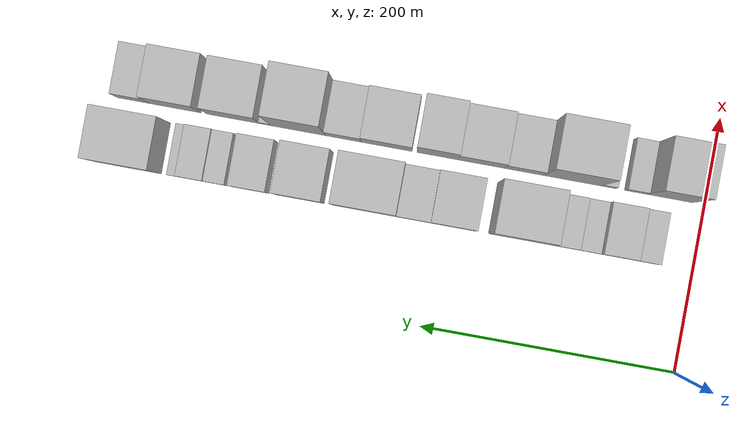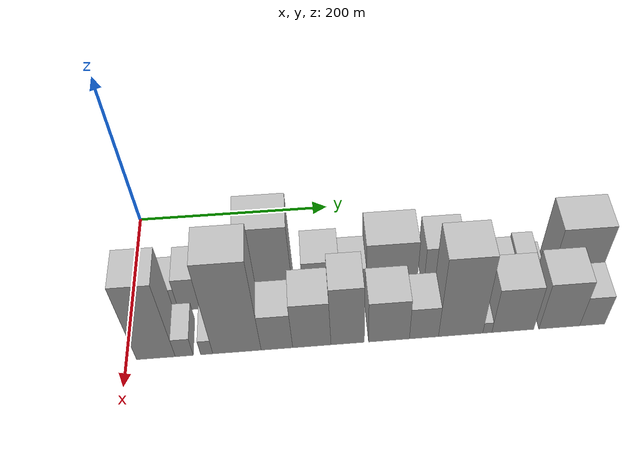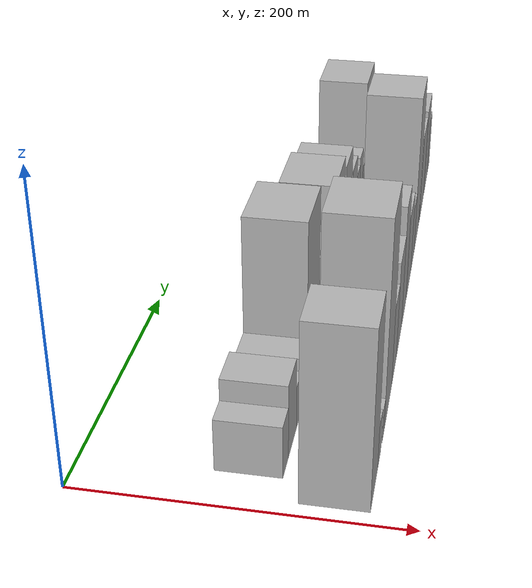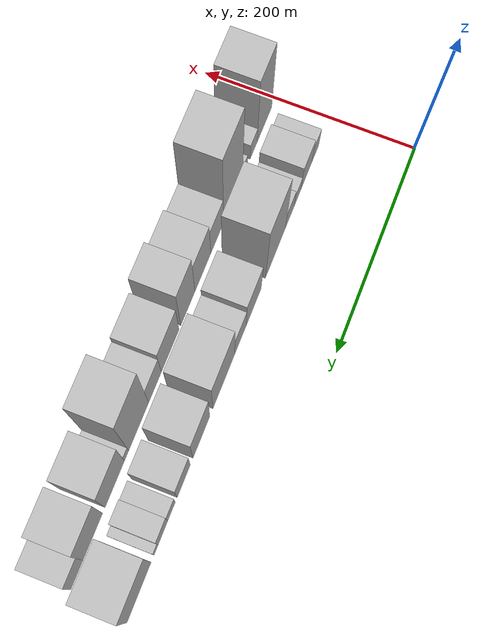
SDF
<sdf version="1.6">
 <world name="default">
  <model name="building_14">
   <static>1</static>
   <pose>100.0000 37.8365 0 0.000000 0.000000 0.000000</pose>
   <link name="link">
    <pose>0 0 18.00 0 0 0</pose>
    <collision name="collision"><geometry><box><size>40.0000 18.0312 36.0000</size></box></geometry></collision>
    <visual name="visual">
     <cast_shadows>0</cast_shadows>
     <geometry><box><size>40.0000 18.0312 36.0000</size></box></geometry>
     <material>
      <script>
       <uri>model://HANNAS_wall/materials/scripts</uri>
       <uri>model://HANNAS_wall/materials/textures</uri>
       <name>vrc/HANNAS_wall</name>
      </script>
     </material>
    </visual>
   </link>
  </model>
  <model name="building_15">
   <static>1</static>
   <pose>100.0000 60.6274 0 0.000000 0.000000 0.000000</pose>
   <link name="link">
    <pose>0 0 25.50 0 0 0</pose>
    <collision name="collision"><geometry><box><size>40.0000 27.5505 51.0000</size></box></geometry></collision>
    <visual name="visual">
     <cast_shadows>0</cast_shadows>
     <geometry><box><size>40.0000 27.5505 51.0000</size></box></geometry>
     <material>
      <script>
       <uri>model://HANNAS_wall/materials/scripts</uri>
       <uri>model://HANNAS_wall/materials/textures</uri>
       <name>vrc/HANNAS_wall</name>
      </script>
     </material>
    </visual>
   </link>
  </model>
  <model name="building_16">
   <static>1</static>
   <pose>100.0000 82.7552 0 0.000000 0.000000 0.000000</pose>
   <link name="link">
    <pose>0 0 15.00 0 0 0</pose>
    <collision name="collision"><geometry><box><size>40.0000 16.7052 30.0000</size></box></geometry></collision>
    <visual name="visual">
     <cast_shadows>0</cast_shadows>
     <geometry><box><size>40.0000 16.7052 30.0000</size></box></geometry>
     <material>
      <script>
       <uri>model://HANNAS_wall/materials/scripts</uri>
       <uri>model://HANNAS_wall/materials/textures</uri>
       <name>vrc/HANNAS_wall</name>
      </script>
     </material>
    </visual>
   </link>
  </model>
  <model name="building_17">
   <static>1</static>
   <pose>100.0000 101.9925 0 0.000000 0.000000 0.000000</pose>
   <link name="link">
    <pose>0 0 19.50 0 0 0</pose>
    <collision name="collision"><geometry><box><size>40.0000 21.7692 39.0000</size></box></geometry></collision>
    <visual name="visual">
     <cast_shadows>0</cast_shadows>
     <geometry><box><size>40.0000 21.7692 39.0000</size></box></geometry>
     <material>
      <script>
       <uri>model://HANNAS_wall/materials/scripts</uri>
       <uri>model://HANNAS_wall/materials/textures</uri>
       <name>vrc/HANNAS_wall</name>
      </script>
     </material>
    </visual>
   </link>
  </model>
  <model name="building_18">
   <static>1</static>
   <pose>100.0000 136.7933 0 0.000000 0.000000 0.000000</pose>
   <link name="link">
    <pose>0 0 60.00 0 0 0</pose>
    <collision name="collision"><geometry><box><size>40.0000 47.8324 120.0000</size></box></geometry></collision>
    <visual name="visual">
     <cast_shadows>0</cast_shadows>
     <geometry><box><size>40.0000 47.8324 120.0000</size></box></geometry>
     <material>
      <script>
       <uri>model://HANNAS_wall/materials/scripts</uri>
       <uri>model://HANNAS_wall/materials/textures</uri>
       <name>vrc/HANNAS_wall</name>
      </script>
     </material>
    </visual>
   </link>
  </model>
  <model name="building_19">
   <static>1</static>
   <pose>100.0000 188.5553 0 0.000000 0.000000 0.000000</pose>
   <link name="link">
    <pose>0 0 31.50 0 0 0</pose>
    <collision name="collision"><geometry><box><size>40.0000 35.6916 63.0000</size></box></geometry></collision>
    <visual name="visual">
     <cast_shadows>0</cast_shadows>
     <geometry><box><size>40.0000 35.6916 63.0000</size></box></geometry>
     <material>
      <script>
       <uri>model://HANNAS_wall/materials/scripts</uri>
       <uri>model://HANNAS_wall/materials/textures</uri>
       <name>vrc/HANNAS_wall</name>
      </script>
     </material>
    </visual>
   </link>
  </model>
  <model name="building_20">
   <static>1</static>
   <pose>100.0000 219.6502 0 0.000000 0.000000 0.000000</pose>
   <link name="link">
    <pose>0 0 24.00 0 0 0</pose>
    <collision name="collision"><geometry><box><size>40.0000 26.4983 48.0000</size></box></geometry></collision>
    <visual name="visual">
     <cast_shadows>0</cast_shadows>
     <geometry><box><size>40.0000 26.4983 48.0000</size></box></geometry>
     <material>
      <script>
       <uri>model://HANNAS_wall/materials/scripts</uri>
       <uri>model://HANNAS_wall/materials/textures</uri>
       <name>vrc/HANNAS_wall</name>
      </script>
     </material>
    </visual>
   </link>
  </model>
  <model name="building_21">
   <static>1</static>
   <pose>100.0000 257.8796 0 0.000000 0.000000 0.000000</pose>
   <link name="link">
    <pose>0 0 42.00 0 0 0</pose>
    <collision name="collision"><geometry><box><size>40.0000 49.9606 84.0000</size></box></geometry></collision>
    <visual name="visual">
     <cast_shadows>0</cast_shadows>
     <geometry><box><size>40.0000 49.9606 84.0000</size></box></geometry>
     <material>
      <script>
       <uri>model://HANNAS_wall/materials/scripts</uri>
       <uri>model://HANNAS_wall/materials/textures</uri>
       <name>vrc/HANNAS_wall</name>
      </script>
     </material>
    </visual>
   </link>
  </model>
  <model name="building_22">
   <static>1</static>
   <pose>100.0000 308.6367 0 0.000000 0.000000 0.000000</pose>
   <link name="link">
    <pose>0 0 36.00 0 0 0</pose>
    <collision name="collision"><geometry><box><size>40.0000 37.5536 72.0000</size></box></geometry></collision>
    <visual name="visual">
     <cast_shadows>0</cast_shadows>
     <geometry><box><size>40.0000 37.5536 72.0000</size></box></geometry>
     <material>
      <script>
       <uri>model://HANNAS_wall/materials/scripts</uri>
       <uri>model://HANNAS_wall/materials/textures</uri>
       <name>vrc/HANNAS_wall</name>
      </script>
     </material>
    </visual>
   </link>
  </model>
  <model name="building_23">
   <static>1</static>
   <pose>100.0000 347.7771 0 0.000000 0.000000 0.000000</pose>
   <link name="link">
    <pose>0 0 24.00 0 0 0</pose>
    <collision name="collision"><geometry><box><size>40.0000 28.7272 48.0000</size></box></geometry></collision>
    <visual name="visual">
     <cast_shadows>0</cast_shadows>
     <geometry><box><size>40.0000 28.7272 48.0000</size></box></geometry>
     <material>
      <script>
       <uri>model://HANNAS_wall/materials/scripts</uri>
       <uri>model://HANNAS_wall/materials/textures</uri>
       <name>vrc/HANNAS_wall</name>
      </script>
     </material>
    </visual>
   </link>
  </model>
  <model name="building_24">
   <static>1</static>
   <pose>100.0000 374.4131 0 0.000000 0.000000 0.000000</pose>
   <link name="link">
    <pose>0 0 15.00 0 0 0</pose>
    <collision name="collision"><geometry><box><size>40.0000 16.5447 30.0000</size></box></geometry></collision>
    <visual name="visual">
     <cast_shadows>0</cast_shadows>
     <geometry><box><size>40.0000 16.5447 30.0000</size></box></geometry>
     <material>
      <script>
       <uri>model://HANNAS_wall/materials/scripts</uri>
       <uri>model://HANNAS_wall/materials/textures</uri>
       <name>vrc/HANNAS_wall</name>
      </script>
     </material>
    </visual>
   </link>
  </model>
  <model name="building_25">
   <static>1</static>
   <pose>100.0000 393.1155 0 0.000000 0.000000 0.000000</pose>
   <link name="link">
    <pose>0 0 18.00 0 0 0</pose>
    <collision name="collision"><geometry><box><size>40.0000 20.8601 36.0000</size></box></geometry></collision>
    <visual name="visual">
     <cast_shadows>0</cast_shadows>
     <geometry><box><size>40.0000 20.8601 36.0000</size></box></geometry>
     <material>
      <script>
       <uri>model://HANNAS_wall/materials/scripts</uri>
       <uri>model://HANNAS_wall/materials/textures</uri>
       <name>vrc/HANNAS_wall</name>
      </script>
     </material>
    </visual>
   </link>
  </model>
  <model name="building_26">
   <static>1</static>
   <pose>100.0000 407.8156 0 0.000000 0.000000 0.000000</pose>
   <link name="link">
    <pose>0 0 9.00 0 0 0</pose>
    <collision name="collision"><geometry><box><size>40.0000 8.5401 18.0000</size></box></geometry></collision>
    <visual name="visual">
     <cast_shadows>0</cast_shadows>
     <geometry><box><size>40.0000 8.5401 18.0000</size></box></geometry>
     <material>
      <script>
       <uri>model://HANNAS_wall/materials/scripts</uri>
       <uri>model://HANNAS_wall/materials/textures</uri>
       <name>vrc/HANNAS_wall</name>
      </script>
     </material>
    </visual>
   </link>
  </model>
  <model name="building_27">
   <static>1</static>
   <pose>100.0000 443.5218 0 0.000000 0.000000 0.000000</pose>
   <link name="link">
    <pose>0 0 43.50 0 0 0</pose>
    <collision name="collision"><geometry><box><size>40.0000 50.8722 87.0000</size></box></geometry></collision>
    <visual name="visual">
     <cast_shadows>0</cast_shadows>
     <geometry><box><size>40.0000 50.8722 87.0000</size></box></geometry>
     <material>
      <script>
       <uri>model://HANNAS_wall/materials/scripts</uri>
       <uri>model://HANNAS_wall/materials/textures</uri>
       <name>vrc/HANNAS_wall</name>
      </script>
     </material>
    </visual>
   </link>
  </model>
  <model name="building_40">
   <static>1</static>
   <pose>152.0000 27.9602 0 0.000000 0.000000 0.000000</pose>
   <link name="link">
    <pose>0 0 60.00 0 0 0</pose>
    <collision name="collision"><geometry><box><size>40.0000 36.3512 120.0000</size></box></geometry></collision>
    <visual name="visual">
     <cast_shadows>0</cast_shadows>
     <geometry><box><size>40.0000 36.3512 120.0000</size></box></geometry>
     <material>
      <script>
       <uri>model://HANNAS_wall/materials/scripts</uri>
       <uri>model://HANNAS_wall/materials/textures</uri>
       <name>vrc/HANNAS_wall</name>
      </script>
     </material>
    </visual>
   </link>
  </model>
  <model name="building_41">
   <static>1</static>
   <pose>152.0000 54.6084 0 0.000000 0.000000 0.000000</pose>
   <link name="link">
    <pose>0 0 15.00 0 0 0</pose>
    <collision name="collision"><geometry><box><size>40.0000 16.9452 30.0000</size></box></geometry></collision>
    <visual name="visual">
     <cast_shadows>0</cast_shadows>
     <geometry><box><size>40.0000 16.9452 30.0000</size></box></geometry>
     <material>
      <script>
       <uri>model://HANNAS_wall/materials/scripts</uri>
       <uri>model://HANNAS_wall/materials/textures</uri>
       <name>vrc/HANNAS_wall</name>
      </script>
     </material>
    </visual>
   </link>
  </model>
  <model name="building_42">
   <static>1</static>
   <pose>152.0000 75.8098 0 0.000000 0.000000 0.000000</pose>
   <link name="link">
    <pose>0 0 12.00 0 0 0</pose>
    <collision name="collision"><geometry><box><size>40.0000 11.4576 24.0000</size></box></geometry></collision>
    <visual name="visual">
     <cast_shadows>0</cast_shadows>
     <geometry><box><size>40.0000 11.4576 24.0000</size></box></geometry>
     <material>
      <script>
       <uri>model://HANNAS_wall/materials/scripts</uri>
       <uri>model://HANNAS_wall/materials/textures</uri>
       <name>vrc/HANNAS_wall</name>
      </script>
     </material>
    </visual>
   </link>
  </model>
  <model name="building_43">
   <static>1</static>
   <pose>152.0000 104.4448 0 0.000000 0.000000 0.000000</pose>
   <link name="link">
    <pose>0 0 72.00 0 0 0</pose>
    <collision name="collision"><geometry><box><size>40.0000 45.8125 144.0000</size></box></geometry></collision>
    <visual name="visual">
     <cast_shadows>0</cast_shadows>
     <geometry><box><size>40.0000 45.8125 144.0000</size></box></geometry>
     <material>
      <script>
       <uri>model://HANNAS_wall/materials/scripts</uri>
       <uri>model://HANNAS_wall/materials/textures</uri>
       <name>vrc/HANNAS_wall</name>
      </script>
     </material>
    </visual>
   </link>
  </model>
  <model name="building_44">
   <static>1</static>
   <pose>152.0000 142.4208 0 0.000000 0.000000 0.000000</pose>
   <link name="link">
    <pose>0 0 28.50 0 0 0</pose>
    <collision name="collision"><geometry><box><size>40.0000 30.1395 57.0000</size></box></geometry></collision>
    <visual name="visual">
     <cast_shadows>0</cast_shadows>
     <geometry><box><size>40.0000 30.1395 57.0000</size></box></geometry>
     <material>
      <script>
       <uri>model://HANNAS_wall/materials/scripts</uri>
       <uri>model://HANNAS_wall/materials/textures</uri>
       <name>vrc/HANNAS_wall</name>
      </script>
     </material>
    </visual>
   </link>
  </model>
  <model name="building_45">
   <static>1</static>
   <pose>152.0000 175.8101 0 0.000000 0.000000 0.000000</pose>
   <link name="link">
    <pose>0 0 36.00 0 0 0</pose>
    <collision name="collision"><geometry><box><size>40.0000 36.6391 72.0000</size></box></geometry></collision>
    <visual name="visual">
     <cast_shadows>0</cast_shadows>
     <geometry><box><size>40.0000 36.6391 72.0000</size></box></geometry>
     <material>
      <script>
       <uri>model://HANNAS_wall/materials/scripts</uri>
       <uri>model://HANNAS_wall/materials/textures</uri>
       <name>vrc/HANNAS_wall</name>
      </script>
     </material>
    </visual>
   </link>
  </model>
  <model name="building_46">
   <static>1</static>
   <pose>152.0000 210.2056 0 0.000000 0.000000 0.000000</pose>
   <link name="link">
    <pose>0 0 46.50 0 0 0</pose>
    <collision name="collision"><geometry><box><size>40.0000 32.1518 93.0000</size></box></geometry></collision>
    <visual name="visual">
     <cast_shadows>0</cast_shadows>
     <geometry><box><size>40.0000 32.1518 93.0000</size></box></geometry>
     <material>
      <script>
       <uri>model://HANNAS_wall/materials/scripts</uri>
       <uri>model://HANNAS_wall/materials/textures</uri>
       <name>vrc/HANNAS_wall</name>
      </script>
     </material>
    </visual>
   </link>
  </model>
  <model name="building_47">
   <static>1</static>
   <pose>152.0000 250.0359 0 0.000000 0.000000 0.000000</pose>
   <link name="link">
    <pose>0 0 33.00 0 0 0</pose>
    <collision name="collision"><geometry><box><size>40.0000 39.5088 66.0000</size></box></geometry></collision>
    <visual name="visual">
     <cast_shadows>0</cast_shadows>
     <geometry><box><size>40.0000 39.5088 66.0000</size></box></geometry>
     <material>
      <script>
       <uri>model://HANNAS_wall/materials/scripts</uri>
       <uri>model://HANNAS_wall/materials/textures</uri>
       <name>vrc/HANNAS_wall</name>
      </script>
     </material>
    </visual>
   </link>
  </model>
  <model name="building_48">
   <static>1</static>
   <pose>152.0000 283.8736 0 0.000000 0.000000 0.000000</pose>
   <link name="link">
    <pose>0 0 25.50 0 0 0</pose>
    <collision name="collision"><geometry><box><size>40.0000 28.1666 51.0000</size></box></geometry></collision>
    <visual name="visual">
     <cast_shadows>0</cast_shadows>
     <geometry><box><size>40.0000 28.1666 51.0000</size></box></geometry>
     <material>
      <script>
       <uri>model://HANNAS_wall/materials/scripts</uri>
       <uri>model://HANNAS_wall/materials/textures</uri>
       <name>vrc/HANNAS_wall</name>
      </script>
     </material>
    </visual>
   </link>
  </model>
  <model name="building_49">
   <static>1</static>
   <pose>152.0000 319.5860 0 0.000000 0.000000 0.000000</pose>
   <link name="link">
    <pose>0 0 63.00 0 0 0</pose>
    <collision name="collision"><geometry><box><size>40.0000 43.2581 126.0000</size></box></geometry></collision>
    <visual name="visual">
     <cast_shadows>0</cast_shadows>
     <geometry><box><size>40.0000 43.2581 126.0000</size></box></geometry>
     <material>
      <script>
       <uri>model://HANNAS_wall/materials/scripts</uri>
       <uri>model://HANNAS_wall/materials/textures</uri>
       <name>vrc/HANNAS_wall</name>
      </script>
     </material>
    </visual>
   </link>
  </model>
  <model name="building_50">
   <static>1</static>
   <pose>152.0000 345.6651 0 0.000000 0.000000 0.000000</pose>
   <link name="link">
    <pose>0 0 9.00 0 0 0</pose>
    <collision name="collision"><geometry><box><size>40.0000 8.9001 18.0000</size></box></geometry></collision>
    <visual name="visual">
     <cast_shadows>0</cast_shadows>
     <geometry><box><size>40.0000 8.9001 18.0000</size></box></geometry>
     <material>
      <script>
       <uri>model://HANNAS_wall/materials/scripts</uri>
       <uri>model://HANNAS_wall/materials/textures</uri>
       <name>vrc/HANNAS_wall</name>
      </script>
     </material>
    </visual>
   </link>
  </model>
  <model name="building_51">
   <static>1</static>
   <pose>152.0000 370.7512 0 0.000000 0.000000 0.000000</pose>
   <link name="link">
    <pose>0 0 36.00 0 0 0</pose>
    <collision name="collision"><geometry><box><size>40.0000 41.2721 72.0000</size></box></geometry></collision>
    <visual name="visual">
     <cast_shadows>0</cast_shadows>
     <geometry><box><size>40.0000 41.2721 72.0000</size></box></geometry>
     <material>
      <script>
       <uri>model://HANNAS_wall/materials/scripts</uri>
       <uri>model://HANNAS_wall/materials/textures</uri>
       <name>vrc/HANNAS_wall</name>
      </script>
     </material>
    </visual>
   </link>
  </model>
  <model name="building_52">
   <static>1</static>
   <pose>152.0000 416.5624 0 0.000000 0.000000 0.000000</pose>
   <link name="link">
    <pose>0 0 37.50 0 0 0</pose>
    <collision name="collision"><geometry><box><size>40.0000 40.3503 75.0000</size></box></geometry></collision>
    <visual name="visual">
     <cast_shadows>0</cast_shadows>
     <geometry><box><size>40.0000 40.3503 75.0000</size></box></geometry>
     <material>
      <script>
       <uri>model://HANNAS_wall/materials/scripts</uri>
       <uri>model://HANNAS_wall/materials/textures</uri>
       <name>vrc/HANNAS_wall</name>
      </script>
     </material>
    </visual>
   </link>
  </model>
  <model name="building_53">
   <static>1</static>
   <pose>152.0000 449.2008 0 0.000000 0.000000 0.000000</pose>
   <link name="link">
    <pose>0 0 24.00 0 0 0</pose>
    <collision name="collision"><geometry><box><size>40.0000 24.9264 48.0000</size></box></geometry></collision>
    <visual name="visual">
     <cast_shadows>0</cast_shadows>
     <geometry><box><size>40.0000 24.9264 48.0000</size></box></geometry>
     <material>
      <script>
       <uri>model://HANNAS_wall/materials/scripts</uri>
       <uri>model://HANNAS_wall/materials/textures</uri>
       <name>vrc/HANNAS_wall</name>
      </script>
     </material>
    </visual>
   </link>
  </model>
 </world>
</sdf>
